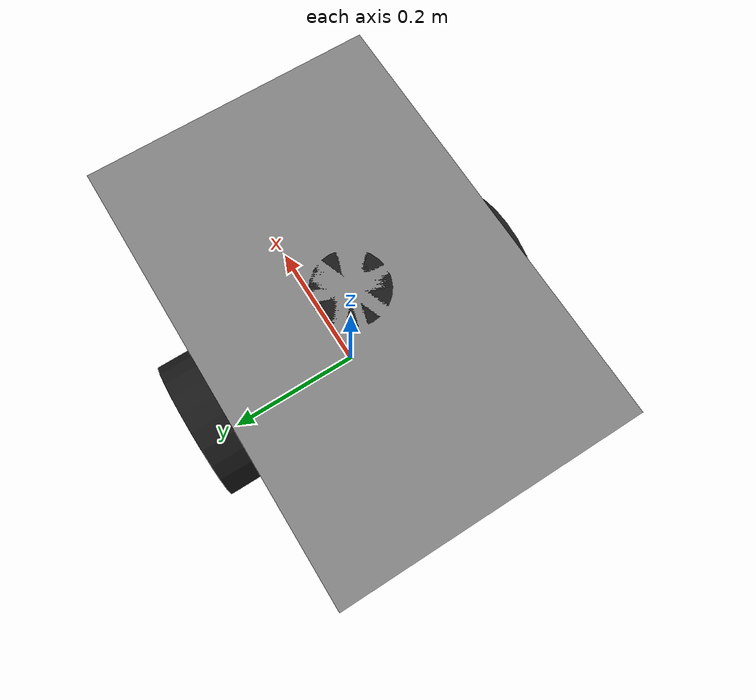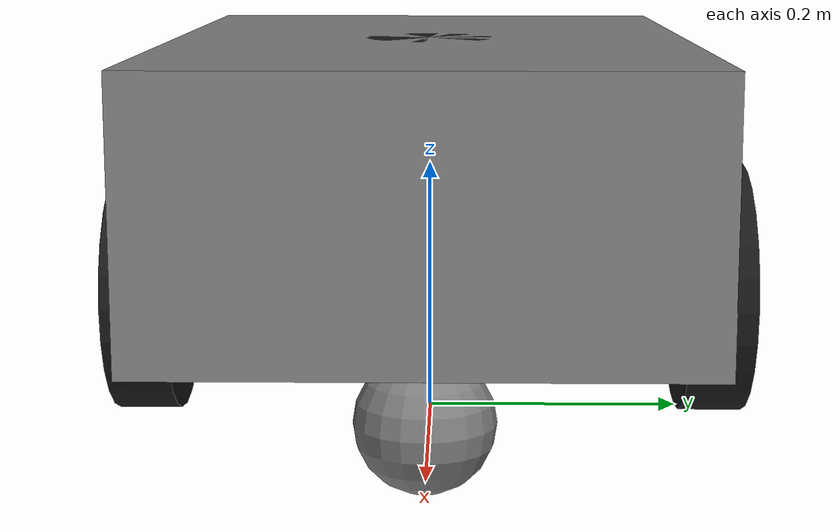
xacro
<?xml version="1.0"?>
<robot xmlns:xacro="http://www.ros.org/wiki/xacro" name="warehouse_robot">

  <xacro:property name="body_length"  value="0.6"/>
  <xacro:property name="body_width"   value="0.4"/>
  <xacro:property name="body_height"  value="0.2"/>
  <xacro:property name="wheel_radius" value="0.1"/>
  <xacro:property name="wheel_length" value="0.05"/>
  <xacro:property name="wheel_y"      value="0.225"/>
  <xacro:property name="caster_radius" value="0.05"/>
  <xacro:property name="caster_x"      value="0.22"/>

  <material name="grey"><color rgba="0.5 0.5 0.5 1"/></material>
  <material name="black"><color rgba="0.1 0.1 0.1 1"/></material>

  <link name="base_link"/>

  <joint name="chassis_joint" type="fixed">
    <parent link="base_link"/><child link="chassis"/>
    <origin xyz="0 0 0.2"/>
  </joint>
  <link name="chassis">
    <visual><geometry><box size="${body_length} ${body_width} ${body_height}"/></geometry><material name="grey"/></visual>
    <collision><geometry><box size="${body_length} ${body_width} ${body_height}"/></geometry></collision>
    <inertial>
      <mass value="5.0"/>
      <inertia ixx="${1/12*5.0*(body_width*body_width+body_height*body_height)}" ixy="0" ixz="0"
               iyy="${1/12*5.0*(body_length*body_length+body_height*body_height)}" iyz="0"
               izz="${1/12*5.0*(body_length*body_length+body_width*body_width)}"/>
    </inertial>
  </link>

  <!-- TWO DRIVEN WHEELS at the centre axle (base_link) -->
  <xacro:macro name="drive_wheel" params="name y">
    <joint name="${name}_joint" type="continuous">
      <parent link="chassis"/><child link="${name}_link"/>
      <origin xyz="0 ${y} -${wheel_radius}" rpy="0 0 0"/>
      <axis xyz="0 1 0"/>
    </joint>
    <link name="${name}_link">
      <visual><origin xyz="0 0 0" rpy="1.5708 0 0"/><geometry><cylinder radius="${wheel_radius}" length="${wheel_length}"/></geometry><material name="black"/></visual>
      <collision><origin xyz="0 0 0" rpy="1.5708 0 0"/><geometry><cylinder radius="${wheel_radius}" length="${wheel_length}"/></geometry></collision>
      <inertial>
        <mass value="0.5"/>
        <inertia ixx="${(1/12)*0.5*(3*wheel_radius*wheel_radius+wheel_length*wheel_length)}" ixy="0" ixz="0"
                 iyy="${(1/12)*0.5*(3*wheel_radius*wheel_radius+wheel_length*wheel_length)}" iyz="0"
                 izz="${(1/2)*0.5*(wheel_radius*wheel_radius)}"/>
      </inertial>
    </link>
    <gazebo reference="${name}_link">
      <mu1>1.0</mu1><mu2>1.0</mu2><kp>1000000.0</kp><kd>10.0</kd><minDepth>0.002</minDepth>
    </gazebo>
  </xacro:macro>
  <xacro:drive_wheel name="left_wheel"  y="${wheel_y}"/>
  <xacro:drive_wheel name="right_wheel" y="-${wheel_y}"/>

  <!-- TWO CASTERS (front + back) -->
  <xacro:macro name="caster" params="name x">
    <joint name="${name}_joint" type="fixed">
      <parent link="chassis"/><child link="${name}_link"/>
      <origin xyz="${x} 0 -${body_height/2 + wheel_radius - caster_radius}" rpy="0 0 0"/>
    </joint>
    <link name="${name}_link">
      <visual><geometry><sphere radius="${caster_radius}"/></geometry><material name="grey"/></visual>
      <collision><geometry><sphere radius="${caster_radius}"/></geometry></collision>
      <inertial><mass value="0.1"/><inertia ixx="0.0001" ixy="0" ixz="0" iyy="0.0001" iyz="0" izz="0.0001"/></inertial>
    </link>
    <gazebo reference="${name}_link">
      <mu1>0.05</mu1><mu2>0.05</mu2><kp>1000000.0</kp><kd>10.0</kd><minDepth>0.002</minDepth>
    </gazebo>
  </xacro:macro>
  <xacro:caster name="front_caster" x="${caster_x}"/>
  <xacro:caster name="back_caster"  x="-${caster_x}"/>

  <!-- LIDAR over centre -->
  <joint name="lidar_joint" type="fixed">
    <parent link="chassis"/><child link="lidar_link"/><origin xyz="0 0 0.08"/>
  </joint>
  <link name="lidar_link">
    <visual><geometry><cylinder radius="0.05" length="0.04"/></geometry><material name="black"/></visual>
    <collision><geometry><cylinder radius="0.05" length="0.04"/></geometry></collision>
    <inertial><mass value="0.1"/><inertia ixx="0.001" ixy="0" ixz="0" iyy="0.001" iyz="0" izz="0.001"/></inertial>
  </link>
  <gazebo reference="lidar_link">
    <sensor name="lidar_sensor" type="gpu_lidar">
      <topic>scan</topic><update_rate>10</update_rate><always_on>true</always_on><visualize>true</visualize>
      <lidar>
        <scan><horizontal><samples>360</samples><resolution>1</resolution><min_angle>-3.14159</min_angle><max_angle>3.14159</max_angle></horizontal></scan>
        <range><min>0.3</min><max>8.0</max><resolution>0.02</resolution></range>
      </lidar>
      <gz_frame_id>lidar_link</gz_frame_id>
    </sensor>
  </gazebo>

  <!-- IMU -->
  <gazebo reference="chassis">
    <sensor name="imu_sensor" type="imu">
      <topic>imu</topic><update_rate>50</update_rate><always_on>true</always_on><gz_frame_id>chassis</gz_frame_id>
    </sensor>
  </gazebo>

  <!-- DIFF DRIVE (EKF publishes odom->base_link TF) -->
  <gazebo>
    <plugin filename="ignition-gazebo-diff-drive-system" name="ignition::gazebo::systems::DiffDrive">
      <left_joint>left_wheel_joint</left_joint><right_joint>right_wheel_joint</right_joint>
      <wheel_separation>0.45</wheel_separation><wheel_radius>${wheel_radius}</wheel_radius>
      <topic>/cmd_vel</topic><odom_topic>/odom</odom_topic>
      <frame_id>odom</frame_id><child_frame_id>base_link</child_frame_id>
      <publish_odom>true</publish_odom><publish_odom_tf>false</publish_odom_tf>
    </plugin>
  </gazebo>

  <gazebo>
    <plugin filename="ignition-gazebo-odometry-publisher-system"
            name="ignition::gazebo::systems::OdometryPublisher">
      <odom_topic>/odom_truth</odom_topic>
      <odom_frame>odom_truth</odom_frame>
      <robot_base_frame>base_link</robot_base_frame>
      <dimensions>3</dimensions>
    </plugin>
  </gazebo>

  <gazebo>
    <plugin filename="ignition-gazebo-sensors-system" name="ignition::gazebo::systems::Sensors"><render_engine>ogre2</render_engine></plugin>
    <plugin filename="ignition-gazebo-imu-system" name="ignition::gazebo::systems::Imu"/>
    <plugin filename="ignition-gazebo-joint-state-publisher-system" name="ignition::gazebo::systems::JointStatePublisher"/>
  </gazebo>

</robot>
